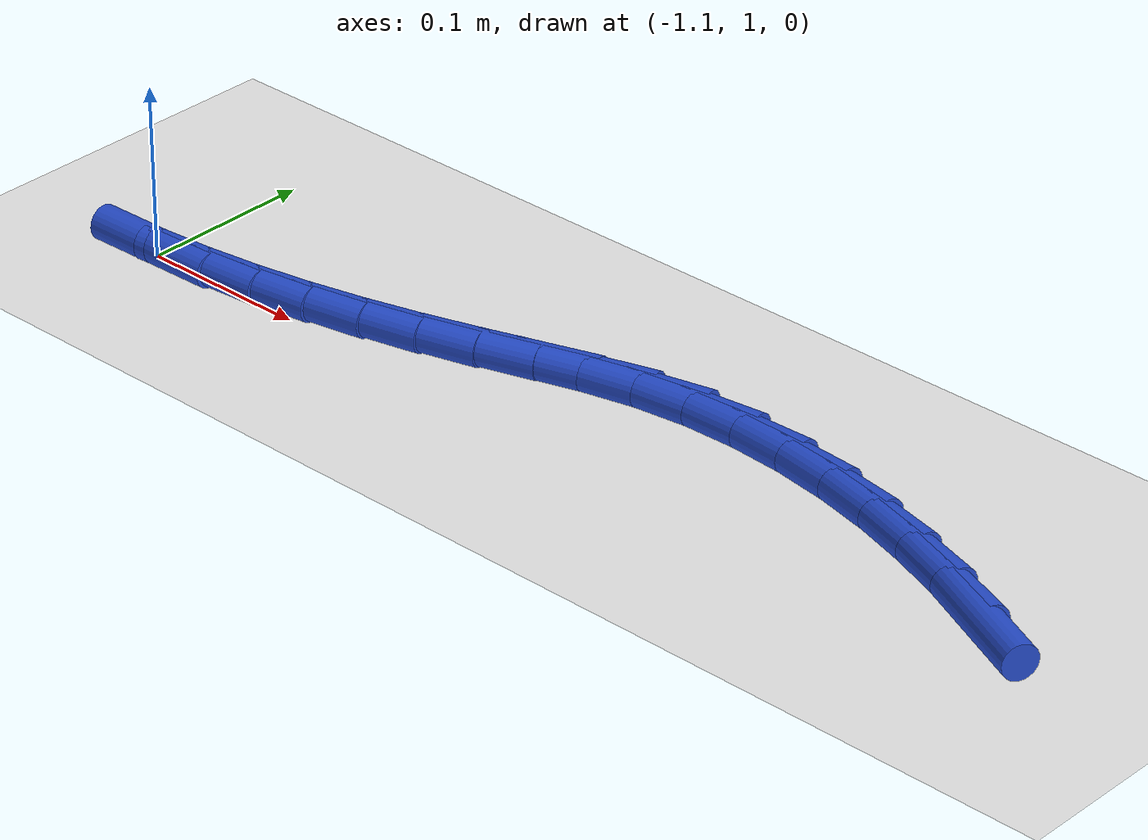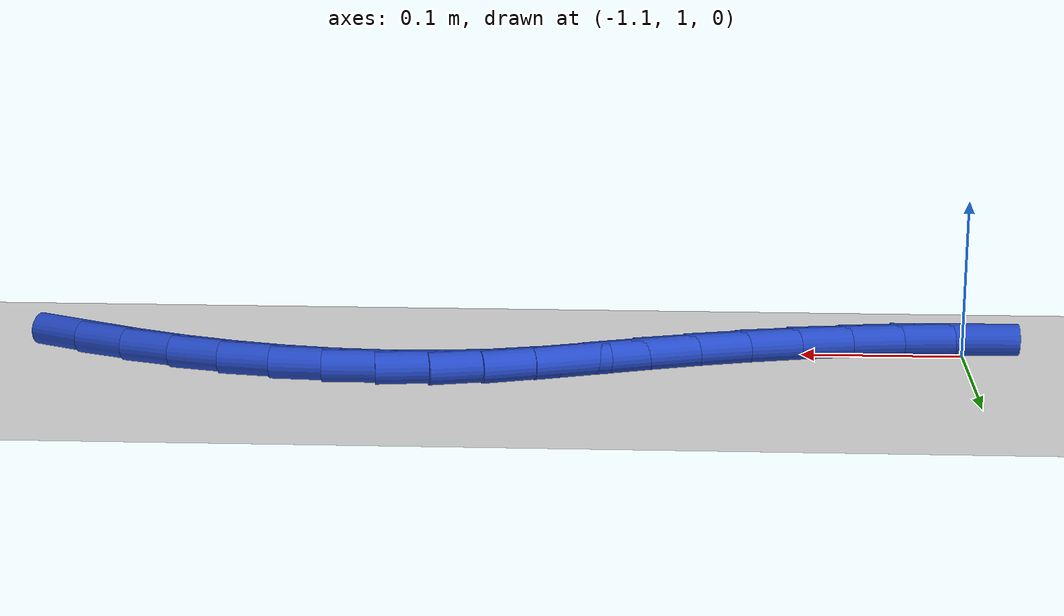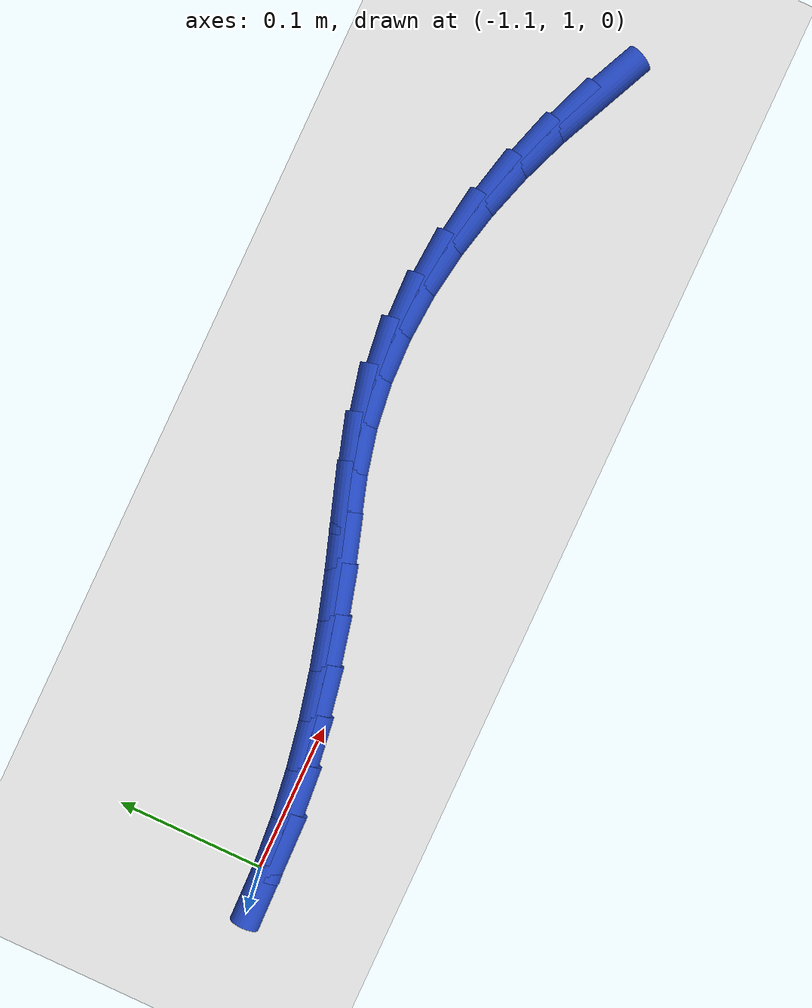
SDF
<sdf version="1.6">
 <world name="default">
  <model name="ground_plane">
   <static>1</static>
   <link name="link">
    <collision name="collision">
     <geometry><plane><normal>0 0 1</normal><size>100 100</size></plane></geometry>
     <surface><friction><ode><mu>100</mu><mu2>50</mu2></ode></friction></surface>
    </collision>
    <visual name="visual">
     <cast_shadows>0</cast_shadows>
     <geometry><plane><normal>0 0 1</normal><size>100 100</size></plane></geometry>
     <material>
      <script><uri>file://media/materials/scripts/gazebo.material</uri><name>Gazebo/WhiteGlow</name></script>
     </material>
    </visual>
   </link>
  </model>
  <model name="line">
   <link name="link_37">
    <pose>-0.555322463433089 1.0142949752362165 0.01 0 1.57 -0.4307225839419919</pose>
    <collision name="collision">
     <geometry><cylinder><radius>0.01</radius><length>0.08</length></cylinder></geometry>
    </collision>
    <visual name="visual">
     <material>
      <script><name>Gazebo/Blue</name><uri>file://media/materials/scripts/gazebo.material</uri></script>
     </material>
     <geometry><cylinder><radius>0.01</radius><length>0.08</length></cylinder></geometry>
    </visual>
   </link>
   <link name="link_38">
    <pose>-0.5861433366786596 1.028457039539059 0.01 0 1.57 -0.368358334791129</pose>
    <collision name="collision">
     <geometry><cylinder><radius>0.01</radius><length>0.08</length></cylinder></geometry>
    </collision>
    <visual name="visual">
     <material>
      <script><name>Gazebo/Blue</name><uri>file://media/materials/scripts/gazebo.material</uri></script>
     </material>
     <geometry><cylinder><radius>0.01</radius><length>0.08</length></cylinder></geometry>
    </visual>
   </link>
   <link name="link_39">
    <pose>-0.6176084804863127 1.0406018213269521 0.01 0 1.57 -0.30166363081155684</pose>
    <collision name="collision">
     <geometry><cylinder><radius>0.01</radius><length>0.08</length></cylinder></geometry>
    </collision>
    <visual name="visual">
     <material>
      <script><name>Gazebo/Blue</name><uri>file://media/materials/scripts/gazebo.material</uri></script>
     </material>
     <geometry><cylinder><radius>0.01</radius><length>0.08</length></cylinder></geometry>
    </visual>
   </link>
   <link name="link_40">
    <pose>-0.6495389777780314 1.0505373152371402 0.01 0 1.57 -0.22972983413771358</pose>
    <collision name="collision">
     <geometry><cylinder><radius>0.01</radius><length>0.08</length></cylinder></geometry>
    </collision>
    <visual name="visual">
     <material>
      <script><name>Gazebo/Blue</name><uri>file://media/materials/scripts/gazebo.material</uri></script>
     </material>
     <geometry><cylinder><radius>0.01</radius><length>0.08</length></cylinder></geometry>
    </visual>
   </link>
   <link name="link_41">
    <pose>-0.6817559114757996 1.058071515906868 0.01 0 1.57 -0.1516793694242874</pose>
    <collision name="collision">
     <geometry><cylinder><radius>0.01</radius><length>0.08</length></cylinder></geometry>
    </collision>
    <visual name="visual">
     <material>
      <script><name>Gazebo/Blue</name><uri>file://media/materials/scripts/gazebo.material</uri></script>
     </material>
     <geometry><cylinder><radius>0.01</radius><length>0.08</length></cylinder></geometry>
    </visual>
   </link>
   <link name="link_42">
    <pose>-0.7140803645016007 1.0630124179733818 0.01 0 1.57 -0.06673467472127449</pose>
    <collision name="collision">
     <geometry><cylinder><radius>0.01</radius><length>0.08</length></cylinder></geometry>
    </collision>
    <visual name="visual">
     <material>
      <script><name>Gazebo/Blue</name><uri>file://media/materials/scripts/gazebo.material</uri></script>
     </material>
     <geometry><cylinder><radius>0.01</radius><length>0.08</length></cylinder></geometry>
    </visual>
   </link>
   <link name="link_43">
    <pose>-0.7463334197774187 1.0651680160739256 0.01 0 1.57 0.025670636677717056</pose>
    <collision name="collision">
     <geometry><cylinder><radius>0.01</radius><length>0.08</length></cylinder></geometry>
    </collision>
    <visual name="visual">
     <material>
      <script><name>Gazebo/Blue</name><uri>file://media/materials/scripts/gazebo.material</uri></script>
     </material>
     <geometry><cylinder><radius>0.01</radius><length>0.08</length></cylinder></geometry>
    </visual>
   </link>
   <link name="link_44">
    <pose>-0.7783361602252366 1.064346304845745 0.01 0 1.57 0.12573740877094772</pose>
    <collision name="collision">
     <geometry><cylinder><radius>0.01</radius><length>0.08</length></cylinder></geometry>
    </collision>
    <visual name="visual">
     <material>
      <script><name>Gazebo/Blue</name><uri>file://media/materials/scripts/gazebo.material</uri></script>
     </material>
     <geometry><cylinder><radius>0.01</radius><length>0.08</length></cylinder></geometry>
    </visual>
   </link>
   <link name="link_45">
    <pose>-0.8099096687670382 1.0603552789260853 0.01 0 1.57 0.22784267795476293</pose>
    <collision name="collision">
     <geometry><cylinder><radius>0.01</radius><length>0.08</length></cylinder></geometry>
    </collision>
    <visual name="visual">
     <material>
      <script><name>Gazebo/Blue</name><uri>file://media/materials/scripts/gazebo.material</uri></script>
     </material>
     <geometry><cylinder><radius>0.01</radius><length>0.08</length></cylinder></geometry>
    </visual>
   </link>
   <link name="link_46">
    <pose>-0.8409326739852288 1.0531620083803703 0.01 0 1.57 0.2969438872481152</pose>
    <collision name="collision">
     <geometry><cylinder><radius>0.01</radius><length>0.08</length></cylinder></geometry>
    </collision>
    <visual name="visual">
     <material>
      <script><name>Gazebo/Blue</name><uri>file://media/materials/scripts/gazebo.material</uri></script>
     </material>
     <geometry><cylinder><radius>0.01</radius><length>0.08</length></cylinder></geometry>
    </visual>
   </link>
   <link name="link_47">
    <pose>-0.8716561880112182 1.0437608941178123 0.01 0 1.57 0.31976469669557983</pose>
    <collision name="collision">
     <geometry><cylinder><radius>0.01</radius><length>0.08</length></cylinder></geometry>
    </collision>
    <visual name="visual">
     <material>
      <script><name>Gazebo/Blue</name><uri>file://media/materials/scripts/gazebo.material</uri></script>
     </material>
     <geometry><cylinder><radius>0.01</radius><length>0.08</length></cylinder></geometry>
    </visual>
   </link>
   <link name="link_48">
    <pose>-0.9024791475073302 1.033554540508576 0.01 0 1.57 0.30025945216626276</pose>
    <collision name="collision">
     <geometry><cylinder><radius>0.01</radius><length>0.08</length></cylinder></geometry>
    </collision>
    <visual name="visual">
     <material>
      <script><name>Gazebo/Blue</name><uri>file://media/materials/scripts/gazebo.material</uri></script>
     </material>
     <geometry><cylinder><radius>0.01</radius><length>0.08</length></cylinder></geometry>
    </visual>
   </link>
   <link name="link_49">
    <pose>-0.9337665579952034 1.023867315224693 0.01 0 1.57 0.26400829053002695</pose>
    <collision name="collision">
     <geometry><cylinder><radius>0.01</radius><length>0.08</length></cylinder></geometry>
    </collision>
    <visual name="visual">
     <material>
      <script><name>Gazebo/Blue</name><uri>file://media/materials/scripts/gazebo.material</uri></script>
     </material>
     <geometry><cylinder><radius>0.01</radius><length>0.08</length></cylinder></geometry>
    </visual>
   </link>
   <link name="link_50">
    <pose>-0.9655587339250417 1.0152733148491182 0.01 0 1.57 0.22440531076914905</pose>
    <collision name="collision">
     <geometry><cylinder><radius>0.01</radius><length>0.08</length></cylinder></geometry>
    </collision>
    <visual name="visual">
     <material>
      <script><name>Gazebo/Blue</name><uri>file://media/materials/scripts/gazebo.material</uri></script>
     </material>
     <geometry><cylinder><radius>0.01</radius><length>0.08</length></cylinder></geometry>
    </visual>
   </link>
   <link name="link_51">
    <pose>-0.9977170641098532 1.0079331884003615 0.01 0 1.57 0.18110619935295755</pose>
    <collision name="collision">
     <geometry><cylinder><radius>0.01</radius><length>0.08</length></cylinder></geometry>
    </collision>
    <visual name="visual">
     <material>
      <script><name>Gazebo/Blue</name><uri>file://media/materials/scripts/gazebo.material</uri></script>
     </material>
     <geometry><cylinder><radius>0.01</radius><length>0.08</length></cylinder></geometry>
    </visual>
   </link>
   <link name="link_52">
    <pose>-1.0301010697268254 1.0020032693081022 0.01 0 1.57 0.1335848246292097</pose>
    <collision name="collision">
     <geometry><cylinder><radius>0.01</radius><length>0.08</length></cylinder></geometry>
    </collision>
    <visual name="visual">
     <material>
      <script><name>Gazebo/Blue</name><uri>file://media/materials/scripts/gazebo.material</uri></script>
     </material>
     <geometry><cylinder><radius>0.01</radius><length>0.08</length></cylinder></geometry>
    </visual>
   </link>
   <link name="link_53">
    <pose>-1.0625702719531458 0.9976398910020214 0.01 0 1.57 0.081282559596008</pose>
    <collision name="collision">
     <geometry><cylinder><radius>0.01</radius><length>0.08</length></cylinder></geometry>
    </collision>
    <visual name="visual">
     <material>
      <script><name>Gazebo/Blue</name><uri>file://media/materials/scripts/gazebo.material</uri></script>
     </material>
     <geometry><cylinder><radius>0.01</radius><length>0.08</length></cylinder></geometry>
    </visual>
   </link>
   <link name="link_54">
    <pose>-1.0949841919660024 0.9949993869117982 0.01 0 1.57 0.023625024721228384</pose>
    <collision name="collision">
     <geometry><cylinder><radius>0.01</radius><length>0.08</length></cylinder></geometry>
    </collision>
    <visual name="visual">
     <material>
      <script><name>Gazebo/Blue</name><uri>file://media/materials/scripts/gazebo.material</uri></script>
     </material>
     <geometry><cylinder><radius>0.01</radius><length>0.08</length></cylinder></geometry>
    </visual>
   </link>
  </model>
 </world>
</sdf>
